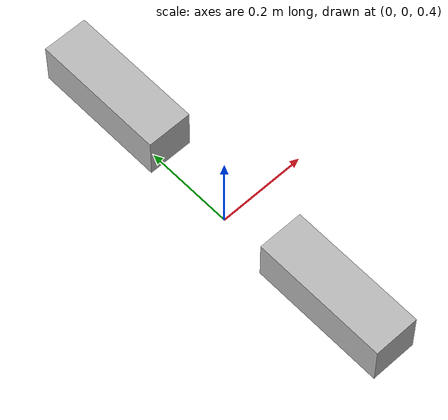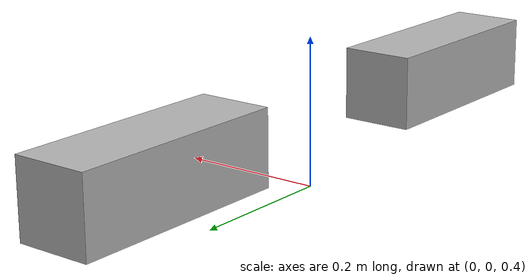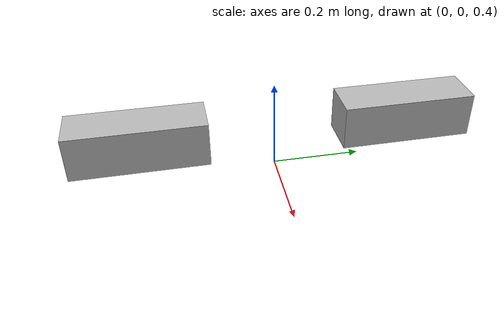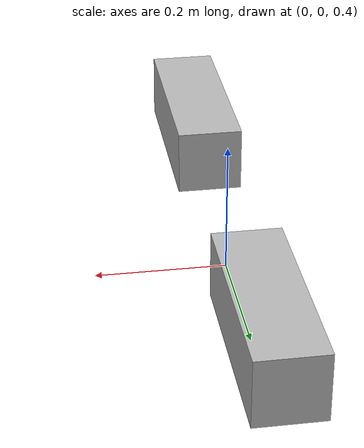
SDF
<?xml version="1.0" ?>
<sdf version="1.9">

  <world name="default">

    <!-- Gravity & physics (optional but recommended) -->
    <physics type="ode">
      <max_step_size>0.001</max_step_size>
      <real_time_factor>1.0</real_time_factor>
    </physics>

    <gravity>0 0 -9.81</gravity>

    <!-- ================= MODEL ================= -->
    <model name="biglide">

      <pose>0 0 0 0 0 0</pose>
      <static>false</static>

      <!-- ========== LINKS ========== -->

      <link name="leftArm">
        <pose>0 0.3 0.5 0 0 0</pose>

        <inertial>
          <mass>1.0</mass>
          <inertia>
            <ixx>0.01</ixx>
            <iyy>0.01</iyy>
            <izz>0.01</izz>
          </inertia>
        </inertial>

        <collision name="collision">
          <geometry>
            <box>
              <size>0.1 0.3 0.1</size>
            </box>
          </geometry>
        </collision>

        <visual name="visual">
          <geometry>
            <box>
              <size>0.1 0.3 0.1</size>
            </box>
          </geometry>
        </visual>
      </link>

      <link name="rightArm">
        <pose>0 -0.3 0.5 0 0 0</pose>

        <inertial>
          <mass>1.0</mass>
          <inertia>
            <ixx>0.01</ixx>
            <iyy>0.01</iyy>
            <izz>0.01</izz>
          </inertia>
        </inertial>

        <collision name="collision">
          <geometry>
            <box>
              <size>0.1 0.3 0.1</size>
            </box>
          </geometry>
        </collision>

        <visual name="visual">
          <geometry>
            <box>
              <size>0.1 0.3 0.1</size>
            </box>
          </geometry>
        </visual>
      </link>

      <!-- ========== JOINTS (example actuated joints) ========== -->

      <joint name="A11" type="revolute">
        <parent>leftArm</parent>
        <child>rightArm</child>
        <axis>
          <xyz>0 0 1</xyz>
          <limit>
            <lower>-3.14</lower>
            <upper>3.14</upper>
          </limit>
        </axis>
      </joint>

      <!-- ========== SYSTEM PLUGINS ========== -->

      <!-- Attach / Detach links plugin -->
      <plugin filename="libattach-links.so"
              name="gz::sim::systems::AttachLinks">
        <parent>leftArm</parent>
        <child>rightArm</child>
      </plugin>

      <!-- Joint state publisher (UPDATED for gz-sim) -->
      <plugin filename="libgz-sim-joint-state-publisher-system.so"
              name="gz::sim::systems::JointStatePublisher"/>

      <!-- Apply force plugin (UPDATED for gz-sim) -->
      <plugin filename="libgz-sim-apply-joint-force-system.so"
              name="gz::sim::systems::ApplyJointForce">
        <joint_name>A11</joint_name>
      </plugin>

    </model>

  </world>
</sdf>
